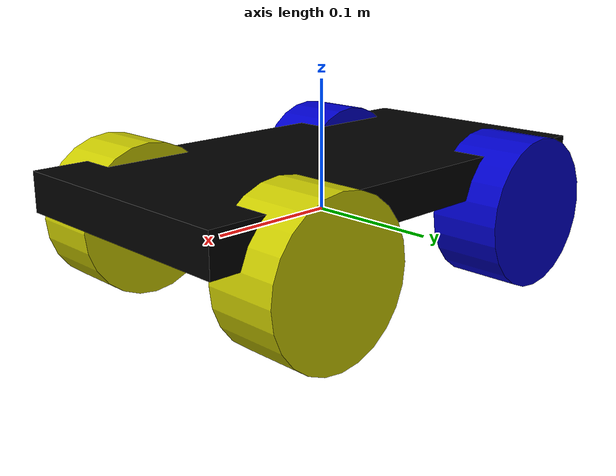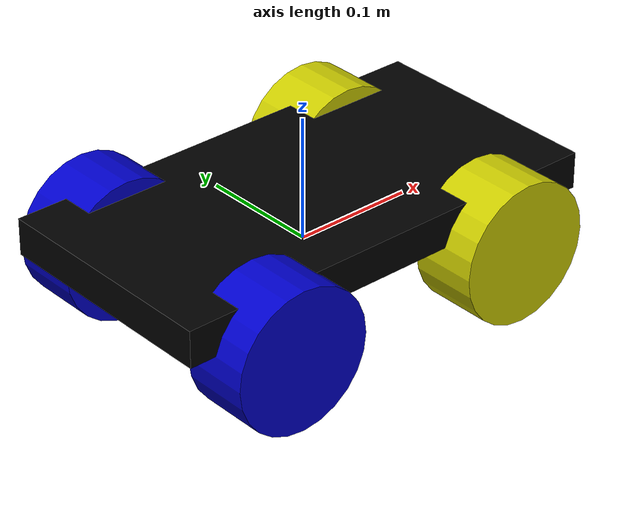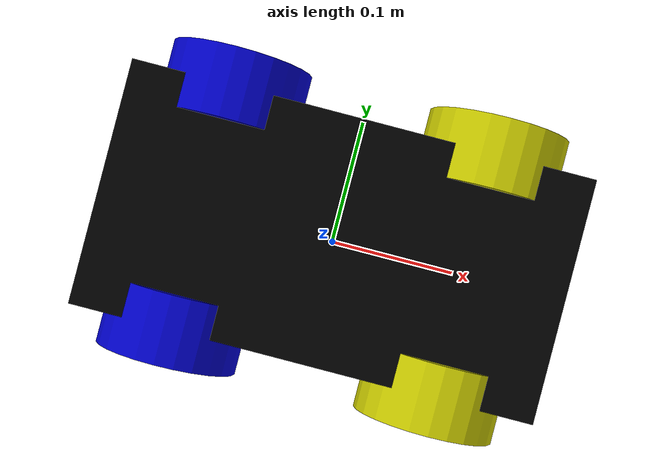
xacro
<?xml version="1.0"?>
<robot xmlns:xacro="http://www.ros.org/wiki/xacro" name="robogardener">
  <xacro:arg name="use_mock_hardware" default="false" />

  <!-- Includes -->
  <xacro:include filename="core.xacro" />
  <xacro:include filename="materials.xacro" />
  <xacro:include filename="$(find robogardener)/description/ros2_control.xacro" />

  <!-- Call macro -->
  <xacro:robogardener_ros2_control
    name="robogardener"
    prefix=""
    use_mock_hardware="$(arg use_mock_hardware)"/>
</robot>

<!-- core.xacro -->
<robot name="robogardener" xmlns:xacro="http://www.ros.org/wiki/xacro">

  <!-- Constants -->
  <xacro:property name="PI" value="3.1415926535897931"/>

  <!-- Physical dimensions (converted to meters) -->
  <xacro:property name="wheel_width" value="0.055" />  <!-- 5.5cm -->
  <xacro:property name="wheel_radius" value="0.0575" /> <!-- 11.5cm diameter -->

  <!-- Wheel positions -->
  <xacro:property name="wheelbase_x" value="0.215" /> <!-- 21.5cm front-to-back -->
  <xacro:property name="wheelbase_y" value="0.195" /> <!-- 19.5cm left-to-right -->

  <!-- Chassis dimensions -->
  <xacro:property name="chassis_length" value="0.37" /> <!-- 37cm -->
  <xacro:property name="chassis_width" value="0.195" /> <!-- 19.5cm -->
  <xacro:property name="chassis_height" value="0.03" /> <!-- 3cm -->
  <xacro:property name="base_height" value="0.06" /> <!-- 6cm rod height -->

  <!-- Mass properties (estimated) -->
  <xacro:property name="chassis_mass" value="2.0" /> <!-- kg -->
  <xacro:property name="wheel_mass" value="0.3" /> <!-- kg -->

  <link name="odom">
    <inertial>
      <mass value="0.001"/>
      <inertia ixx="0.001" ixy="0" ixz="0" iyy="0.001" iyz="0" izz="0.001"/>
    </inertial>
  </link>

  <joint name="odom_joint" type="floating">
    <parent link="odom"/>
    <child link="base_link"/>
  </joint>

  <!-- Main chassis link -->
  <link name="base_link">
    <visual>
      <origin xyz="0 0 ${base_height/2}" rpy="0 0 0"/>
      <geometry>
        <box size="${chassis_length} ${chassis_width} ${chassis_height}"/>
      </geometry>
      <material name="black"/>
    </visual>

    <collision>
      <origin xyz="0 0 ${base_height/2}" rpy="0 0 0"/>
      <geometry>
        <box size="${chassis_length} ${chassis_width} ${chassis_height}"/>
      </geometry>
    </collision>

    <inertial>
      <origin xyz="0 0 ${base_height/2}"/>
      <mass value="${chassis_mass}"/>
      <inertia
        ixx="${chassis_mass/12 * (chassis_width*chassis_width + chassis_height*chassis_height)}" ixy="0" ixz="0"
        iyy="${chassis_mass/12 * (chassis_length*chassis_length + chassis_height*chassis_height)}" iyz="0"
        izz="${chassis_mass/12 * (chassis_length*chassis_length + chassis_width*chassis_width)}"/>
    </inertial>
  </link>

  <!-- All wheels are FIXED to chassis (mechanically linked) -->

  <!-- Front Left Wheel -->
  <link name="left_f_wheel">
    <visual>
      <origin xyz="0 0 0" rpy="${PI/2} 0 0"/>
      <geometry>
        <cylinder radius="${wheel_radius}" length="${wheel_width}"/>
      </geometry>
      <material name="yellow"/>
    </visual>

    <collision>
      <origin xyz="0 0 0" rpy="${PI/2} 0 0"/>
      <geometry>
        <cylinder radius="${wheel_radius}" length="${wheel_width}"/>
      </geometry>
    </collision>

    <inertial>
      <origin xyz="0 0 0" rpy="${PI/2} 0 0"/>
      <mass value="${wheel_mass}"/>
      <inertia
        ixx="${wheel_mass/12 * (3*wheel_radius*wheel_radius + wheel_width*wheel_width)}" ixy="0" ixz="0"
        iyy="${wheel_mass/12 * (3*wheel_radius*wheel_radius + wheel_width*wheel_width)}" iyz="0"
        izz="${wheel_mass/2 * wheel_radius*wheel_radius}"/>
    </inertial>
  </link>

  <joint name="left_f_wheel_joint" type="fixed">
    <parent link="base_link"/>
    <child link="left_f_wheel"/>
    <origin xyz="${wheelbase_x/2} ${-wheelbase_y/2} 0" rpy="0 0 0"/>
  </joint>

  <!-- Front Right Wheel (mirror of left) -->
  <link name="right_f_wheel">
    <!-- Same visual/collision/inertial as left wheel -->
    <visual>
      <origin xyz="0 0 0" rpy="${PI/2} 0 0"/>
      <geometry>
        <cylinder radius="${wheel_radius}" length="${wheel_width}"/>
      </geometry>
      <material name="yellow"/>
    </visual>

    <collision>
      <origin xyz="0 0 0" rpy="${PI/2} 0 0"/>
      <geometry>
        <cylinder radius="${wheel_radius}" length="${wheel_width}"/>
      </geometry>
    </collision>

    <inertial>
      <origin xyz="0 0 0" rpy="${PI/2} 0 0"/>
      <mass value="${wheel_mass}"/>
      <inertia
        ixx="${wheel_mass/12 * (3*wheel_radius*wheel_radius + wheel_width*wheel_width)}" ixy="0" ixz="0"
        iyy="${wheel_mass/12 * (3*wheel_radius*wheel_radius + wheel_width*wheel_width)}" iyz="0"
        izz="${wheel_mass/2 * wheel_radius*wheel_radius}"/>
    </inertial>
  </link>

  <joint name="right_f_wheel_joint" type="fixed">
    <parent link="base_link"/>
    <child link="right_f_wheel"/>
    <origin xyz="${wheelbase_x/2} ${wheelbase_y/2} 0" rpy="0 0 0"/>
  </joint>

  <!-- Rear Wheels (same as front but negative x position) -->
  <link name="left_b_wheel">
    <visual>
      <origin xyz="0 0 0" rpy="${PI/2} 0 0"/>
      <geometry>
        <cylinder radius="${wheel_radius}" length="${wheel_width}"/>
      </geometry>
      <material name="blue"/>
    </visual>

    <collision>
      <origin xyz="0 0 0" rpy="${PI/2} 0 0"/>
      <geometry>
        <cylinder radius="${wheel_radius}" length="${wheel_width}"/>
      </geometry>
    </collision>

    <inertial>
      <origin xyz="0 0 0" rpy="${PI/2} 0 0"/>
      <mass value="${wheel_mass}"/>
      <inertia
        ixx="${wheel_mass/12 * (3*wheel_radius*wheel_radius + wheel_width*wheel_width)}" ixy="0" ixz="0"
        iyy="${wheel_mass/12 * (3*wheel_radius*wheel_radius + wheel_width*wheel_width)}" iyz="0"
        izz="${wheel_mass/2 * wheel_radius*wheel_radius}"/>
    </inertial>
  </link>

  <joint name="left_b_wheel_joint" type="fixed">
    <parent link="base_link"/>
    <child link="left_b_wheel"/>
    <origin xyz="${-wheelbase_x/2} ${-wheelbase_y/2} 0" rpy="0 0 0"/>
  </joint>

  <link name="right_b_wheel">
    <visual>
      <origin xyz="0 0 0" rpy="${PI/2} 0 0"/>
      <geometry>
        <cylinder radius="${wheel_radius}" length="${wheel_width}"/>
      </geometry>
      <material name="blue"/>
    </visual>

    <collision>
      <origin xyz="0 0 0" rpy="${PI/2} 0 0"/>
      <geometry>
        <cylinder radius="${wheel_radius}" length="${wheel_width}"/>
      </geometry>
    </collision>

    <inertial>
      <origin xyz="0 0 0" rpy="${PI/2} 0 0"/>
      <mass value="${wheel_mass}"/>
      <inertia
        ixx="${wheel_mass/12 * (3*wheel_radius*wheel_radius + wheel_width*wheel_width)}" ixy="0" ixz="0"
        iyy="${wheel_mass/12 * (3*wheel_radius*wheel_radius + wheel_width*wheel_width)}" iyz="0"
        izz="${wheel_mass/2 * wheel_radius*wheel_radius}"/>
    </inertial>
  </link>

  <joint name="right_b_wheel_joint" type="fixed">
    <parent link="base_link"/>
    <child link="right_b_wheel"/>
    <origin xyz="${-wheelbase_x/2} ${wheelbase_y/2} 0" rpy="0 0 0"/>
  </joint>

  <!-- Virtual drive joint for the single motor -->
  <link name="virtual_drive_link">
    <inertial>
      <mass value="0.001"/>
      <inertia ixx="0.001" ixy="0" ixz="0" iyy="0.001" iyz="0" izz="0.001"/>
    </inertial>
  </link>

  <joint name="main_drive_joint" type="continuous">
    <parent link="base_link"/>
    <child link="virtual_drive_link"/>
    <axis xyz="0 1 0"/>
  </joint>

  <ros2_control name="SingleMotorDrive" type="system">
    <hardware>
      <plugin>ros2_control_gz/Ros2ControlGazeboSystem</plugin>
    </hardware>
    <joint name="main_drive_joint">
      <command_interface name="velocity"/>
      <state_interface name="position"/>
      <state_interface name="velocity"/>
    </joint>
  </ros2_control>

  <gazebo>
    <plugin filename="libgazebo_ros_diff_drive.so" name="diff_drive">
      <command_topic>cmd_vel</command_topic>
      <odometry_topic>odom</odometry_topic>
      <odometry_frame>odom</odometry_frame>
      <robot_base_frame>base_link</robot_base_frame>
      <wheel_separation>${wheelbase_y}</wheel_separation> <!-- Distance between wheels -->
      <wheel_diameter>${2*wheel_radius}</wheel_diameter>
      <publish_odom>true</publish_odom>
      <publish_odom_tf>true</publish_odom_tf>
    </plugin>
  </gazebo>

</robot>

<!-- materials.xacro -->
<robot>

<!-- Material Color -->

  <material name="blue">
    <color rgba="0 0 0.8 1"/>
  </material>

  <material name="yellow">
    <color rgba="0.8 0.8 0.0 1.0"/>
  </material>

  <material name="white">
    <color rgba="1 1 1 1"/>
  </material>

  <material name="black">
    <color rgba="0 0 0 1"/>
  </material>

  <material name="red">
    <color rgba="0.8 0.0 0.0 1.0"/>
  </material>

  <material name="green">
  <color rgba="0.0 1.0 0.0 1.0"/>
  </material>

</robot>
